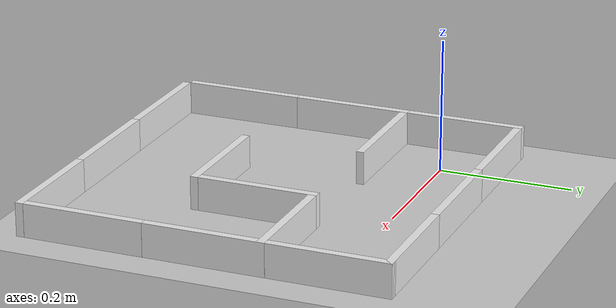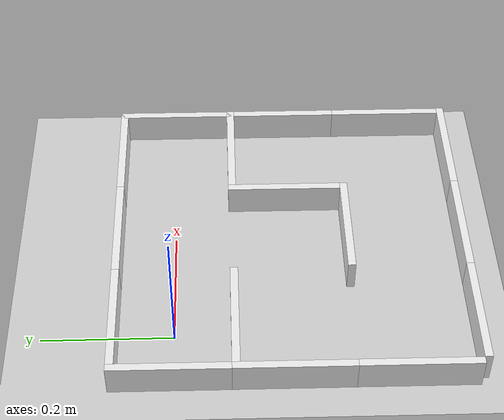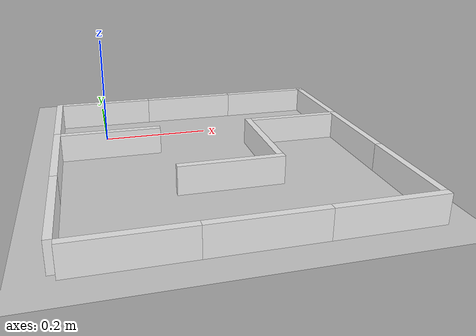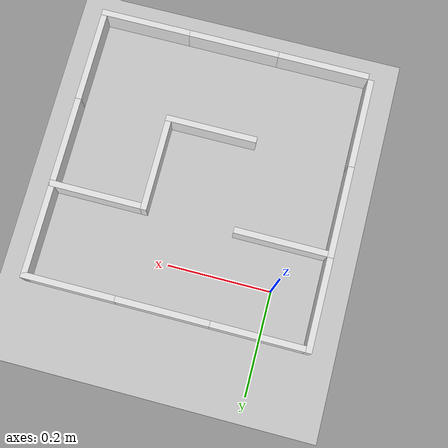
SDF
<?xml version="1.0" ?>
<!-- |    This document was autogenerated by xacro from /home/ubuntu/catkin_ws/src/raspimouse_sim/raspimouse_gazebo/materials/sample_maze.world.xacro | -->
<!-- |    EDITING THIS FILE BY HAND IS NOT RECOMMENDED                                 | -->
<sdf version="1.4" xmlns:xacro="http://ros.org/wiki/xacro">
  <world name="default">
    <scene>
      <shadows>0</shadows>
    </scene>
    <include>
      <uri>model://ground_plane</uri>
    </include>
    <light name="sun" type="directional">
      <cast_shadows>1</cast_shadows>
      <pose>0 0 5 0 0 0</pose>
      <diffuse>0.8 0.8 0.8 1</diffuse>
      <specular>0.2 0.2 0.2 1</specular>
      <attenuation>
        <range>1000</range>
        <constant>0.9</constant>
        <linear>0.01</linear>
        <quadratic>0.001</quadratic>
      </attenuation>
      <direction>-0.5 0.1 -0.9</direction>
    </light>
    <physics type="ode">
      <max_step_size>0.001</max_step_size>
      <real_time_factor>1</real_time_factor>
      <real_time_update_rate>1000</real_time_update_rate>
      <gravity>0 0 -9.8</gravity>
    </physics>
    <gui fullscreen="0">
      <camera name="user_camera">
        <pose>-0.556842 -0.914575 1.68773 0 1.05964 0.520195</pose>
        <view_controller>orbit</view_controller>
      </camera>
    </gui>
    <!-- horizontal -->
    <model name="wall01">
      <pose>-0.090 0.006 0.025 0 0 1.57</pose>
      <link name="link">
        <inertial>
          <mass>10</mass>
          <inertia>
            <ixx>1</ixx>
            <ixy>0</ixy>
            <ixz>0</ixz>
            <iyy>1</iyy>
            <iyz>0</iyz>
            <izz>1</izz>
          </inertia>
        </inertial>
        <collision name="collision">
          <geometry>
            <box>
              <size>0.180 0.012 0.050</size>
            </box>
          </geometry>
          <max_contacts>10</max_contacts>
          <surface>
            <bounce/>
            <friction>
              <ode/>
            </friction>
            <contact>
              <ode/>
            </contact>
          </surface>
        </collision>
        <visual name="visual">
          <geometry>
            <box>
              <size>0.180 0.012 0.050</size>
            </box>
          </geometry>
          <material>
            <script>
              <uri>file://media/materials/scripts/gazebo.material</uri>
              <name>Gazebo/White</name>
            </script>
          </material>
        </visual>
        <velocity_decay>
          <linear>0</linear>
          <angular>0</angular>
        </velocity_decay>
        <self_collide>0</self_collide>
        <kinematic>0</kinematic>
        <gravity>1</gravity>
      </link>
      <static>1</static>
    </model>
    <model name="wall02">
      <pose>-0.090 -0.174 0.025 0 0 1.57</pose>
      <link name="link">
        <inertial>
          <mass>10</mass>
          <inertia>
            <ixx>1</ixx>
            <ixy>0</ixy>
            <ixz>0</ixz>
            <iyy>1</iyy>
            <iyz>0</iyz>
            <izz>1</izz>
          </inertia>
        </inertial>
        <collision name="collision">
          <geometry>
            <box>
              <size>0.180 0.012 0.050</size>
            </box>
          </geometry>
          <max_contacts>10</max_contacts>
          <surface>
            <bounce/>
            <friction>
              <ode/>
            </friction>
            <contact>
              <ode/>
            </contact>
          </surface>
        </collision>
        <visual name="visual">
          <geometry>
            <box>
              <size>0.180 0.012 0.050</size>
            </box>
          </geometry>
          <material>
            <script>
              <uri>file://media/materials/scripts/gazebo.material</uri>
              <name>Gazebo/White</name>
            </script>
          </material>
        </visual>
        <velocity_decay>
          <linear>0</linear>
          <angular>0</angular>
        </velocity_decay>
        <self_collide>0</self_collide>
        <kinematic>0</kinematic>
        <gravity>1</gravity>
      </link>
      <static>1</static>
    </model>
    <model name="wall03">
      <pose>-0.090 -0.354 0.025 0 0 1.57</pose>
      <link name="link">
        <inertial>
          <mass>10</mass>
          <inertia>
            <ixx>1</ixx>
            <ixy>0</ixy>
            <ixz>0</ixz>
            <iyy>1</iyy>
            <iyz>0</iyz>
            <izz>1</izz>
          </inertia>
        </inertial>
        <collision name="collision">
          <geometry>
            <box>
              <size>0.180 0.012 0.050</size>
            </box>
          </geometry>
          <max_contacts>10</max_contacts>
          <surface>
            <bounce/>
            <friction>
              <ode/>
            </friction>
            <contact>
              <ode/>
            </contact>
          </surface>
        </collision>
        <visual name="visual">
          <geometry>
            <box>
              <size>0.180 0.012 0.050</size>
            </box>
          </geometry>
          <material>
            <script>
              <uri>file://media/materials/scripts/gazebo.material</uri>
              <name>Gazebo/White</name>
            </script>
          </material>
        </visual>
        <velocity_decay>
          <linear>0</linear>
          <angular>0</angular>
        </velocity_decay>
        <self_collide>0</self_collide>
        <kinematic>0</kinematic>
        <gravity>1</gravity>
      </link>
      <static>1</static>
    </model>
    <!-- vertical -->
    <model name="wall04">
      <pose>0.006 0.090 0.025 0 0 0</pose>
      <link name="link">
        <inertial>
          <mass>10</mass>
          <inertia>
            <ixx>1</ixx>
            <ixy>0</ixy>
            <ixz>0</ixz>
            <iyy>1</iyy>
            <iyz>0</iyz>
            <izz>1</izz>
          </inertia>
        </inertial>
        <collision name="collision">
          <geometry>
            <box>
              <size>0.180 0.012 0.050</size>
            </box>
          </geometry>
          <max_contacts>10</max_contacts>
          <surface>
            <bounce/>
            <friction>
              <ode/>
            </friction>
            <contact>
              <ode/>
            </contact>
          </surface>
        </collision>
        <visual name="visual">
          <geometry>
            <box>
              <size>0.180 0.012 0.050</size>
            </box>
          </geometry>
          <material>
            <script>
              <uri>file://media/materials/scripts/gazebo.material</uri>
              <name>Gazebo/White</name>
            </script>
          </material>
        </visual>
        <velocity_decay>
          <linear>0</linear>
          <angular>0</angular>
        </velocity_decay>
        <self_collide>0</self_collide>
        <kinematic>0</kinematic>
        <gravity>1</gravity>
      </link>
      <static>1</static>
    </model>
    <model name="wall05">
      <pose>0.186 0.090 0.025 0 0 0</pose>
      <link name="link">
        <inertial>
          <mass>10</mass>
          <inertia>
            <ixx>1</ixx>
            <ixy>0</ixy>
            <ixz>0</ixz>
            <iyy>1</iyy>
            <iyz>0</iyz>
            <izz>1</izz>
          </inertia>
        </inertial>
        <collision name="collision">
          <geometry>
            <box>
              <size>0.180 0.012 0.050</size>
            </box>
          </geometry>
          <max_contacts>10</max_contacts>
          <surface>
            <bounce/>
            <friction>
              <ode/>
            </friction>
            <contact>
              <ode/>
            </contact>
          </surface>
        </collision>
        <visual name="visual">
          <geometry>
            <box>
              <size>0.180 0.012 0.050</size>
            </box>
          </geometry>
          <material>
            <script>
              <uri>file://media/materials/scripts/gazebo.material</uri>
              <name>Gazebo/White</name>
            </script>
          </material>
        </visual>
        <velocity_decay>
          <linear>0</linear>
          <angular>0</angular>
        </velocity_decay>
        <self_collide>0</self_collide>
        <kinematic>0</kinematic>
        <gravity>1</gravity>
      </link>
      <static>1</static>
    </model>
    <model name="wall06">
      <pose>0.366 0.090 0.025 0 0 0</pose>
      <link name="link">
        <inertial>
          <mass>10</mass>
          <inertia>
            <ixx>1</ixx>
            <ixy>0</ixy>
            <ixz>0</ixz>
            <iyy>1</iyy>
            <iyz>0</iyz>
            <izz>1</izz>
          </inertia>
        </inertial>
        <collision name="collision">
          <geometry>
            <box>
              <size>0.180 0.012 0.050</size>
            </box>
          </geometry>
          <max_contacts>10</max_contacts>
          <surface>
            <bounce/>
            <friction>
              <ode/>
            </friction>
            <contact>
              <ode/>
            </contact>
          </surface>
        </collision>
        <visual name="visual">
          <geometry>
            <box>
              <size>0.180 0.012 0.050</size>
            </box>
          </geometry>
          <material>
            <script>
              <uri>file://media/materials/scripts/gazebo.material</uri>
              <name>Gazebo/White</name>
            </script>
          </material>
        </visual>
        <velocity_decay>
          <linear>0</linear>
          <angular>0</angular>
        </velocity_decay>
        <self_collide>0</self_collide>
        <kinematic>0</kinematic>
        <gravity>1</gravity>
      </link>
      <static>1</static>
    </model>
    <!-- horizontal -->
    <model name="wall07">
      <pose>0.450 0.006 0.025 0 0 1.57</pose>
      <link name="link">
        <inertial>
          <mass>10</mass>
          <inertia>
            <ixx>1</ixx>
            <ixy>0</ixy>
            <ixz>0</ixz>
            <iyy>1</iyy>
            <iyz>0</iyz>
            <izz>1</izz>
          </inertia>
        </inertial>
        <collision name="collision">
          <geometry>
            <box>
              <size>0.180 0.012 0.050</size>
            </box>
          </geometry>
          <max_contacts>10</max_contacts>
          <surface>
            <bounce/>
            <friction>
              <ode/>
            </friction>
            <contact>
              <ode/>
            </contact>
          </surface>
        </collision>
        <visual name="visual">
          <geometry>
            <box>
              <size>0.180 0.012 0.050</size>
            </box>
          </geometry>
          <material>
            <script>
              <uri>file://media/materials/scripts/gazebo.material</uri>
              <name>Gazebo/White</name>
            </script>
          </material>
        </visual>
        <velocity_decay>
          <linear>0</linear>
          <angular>0</angular>
        </velocity_decay>
        <self_collide>0</self_collide>
        <kinematic>0</kinematic>
        <gravity>1</gravity>
      </link>
      <static>1</static>
    </model>
    <model name="wall08">
      <pose>0.450 -0.174 0.025 0 0 1.57</pose>
      <link name="link">
        <inertial>
          <mass>10</mass>
          <inertia>
            <ixx>1</ixx>
            <ixy>0</ixy>
            <ixz>0</ixz>
            <iyy>1</iyy>
            <iyz>0</iyz>
            <izz>1</izz>
          </inertia>
        </inertial>
        <collision name="collision">
          <geometry>
            <box>
              <size>0.180 0.012 0.050</size>
            </box>
          </geometry>
          <max_contacts>10</max_contacts>
          <surface>
            <bounce/>
            <friction>
              <ode/>
            </friction>
            <contact>
              <ode/>
            </contact>
          </surface>
        </collision>
        <visual name="visual">
          <geometry>
            <box>
              <size>0.180 0.012 0.050</size>
            </box>
          </geometry>
          <material>
            <script>
              <uri>file://media/materials/scripts/gazebo.material</uri>
              <name>Gazebo/White</name>
            </script>
          </material>
        </visual>
        <velocity_decay>
          <linear>0</linear>
          <angular>0</angular>
        </velocity_decay>
        <self_collide>0</self_collide>
        <kinematic>0</kinematic>
        <gravity>1</gravity>
      </link>
      <static>1</static>
    </model>
    <model name="wall09">
      <pose>0.450 -0.354 0.025 0 0 1.57</pose>
      <link name="link">
        <inertial>
          <mass>10</mass>
          <inertia>
            <ixx>1</ixx>
            <ixy>0</ixy>
            <ixz>0</ixz>
            <iyy>1</iyy>
            <iyz>0</iyz>
            <izz>1</izz>
          </inertia>
        </inertial>
        <collision name="collision">
          <geometry>
            <box>
              <size>0.180 0.012 0.050</size>
            </box>
          </geometry>
          <max_contacts>10</max_contacts>
          <surface>
            <bounce/>
            <friction>
              <ode/>
            </friction>
            <contact>
              <ode/>
            </contact>
          </surface>
        </collision>
        <visual name="visual">
          <geometry>
            <box>
              <size>0.180 0.012 0.050</size>
            </box>
          </geometry>
          <material>
            <script>
              <uri>file://media/materials/scripts/gazebo.material</uri>
              <name>Gazebo/White</name>
            </script>
          </material>
        </visual>
        <velocity_decay>
          <linear>0</linear>
          <angular>0</angular>
        </velocity_decay>
        <self_collide>0</self_collide>
        <kinematic>0</kinematic>
        <gravity>1</gravity>
      </link>
      <static>1</static>
    </model>
    <!-- vertical -->
    <model name="wall10">
      <pose>0.006 -0.450 0.025 0 0 0</pose>
      <link name="link">
        <inertial>
          <mass>10</mass>
          <inertia>
            <ixx>1</ixx>
            <ixy>0</ixy>
            <ixz>0</ixz>
            <iyy>1</iyy>
            <iyz>0</iyz>
            <izz>1</izz>
          </inertia>
        </inertial>
        <collision name="collision">
          <geometry>
            <box>
              <size>0.180 0.012 0.050</size>
            </box>
          </geometry>
          <max_contacts>10</max_contacts>
          <surface>
            <bounce/>
            <friction>
              <ode/>
            </friction>
            <contact>
              <ode/>
            </contact>
          </surface>
        </collision>
        <visual name="visual">
          <geometry>
            <box>
              <size>0.180 0.012 0.050</size>
            </box>
          </geometry>
          <material>
            <script>
              <uri>file://media/materials/scripts/gazebo.material</uri>
              <name>Gazebo/White</name>
            </script>
          </material>
        </visual>
        <velocity_decay>
          <linear>0</linear>
          <angular>0</angular>
        </velocity_decay>
        <self_collide>0</self_collide>
        <kinematic>0</kinematic>
        <gravity>1</gravity>
      </link>
      <static>1</static>
    </model>
    <model name="wall11">
      <pose>0.186 -0.450 0.025 0 0 0</pose>
      <link name="link">
        <inertial>
          <mass>10</mass>
          <inertia>
            <ixx>1</ixx>
            <ixy>0</ixy>
            <ixz>0</ixz>
            <iyy>1</iyy>
            <iyz>0</iyz>
            <izz>1</izz>
          </inertia>
        </inertial>
        <collision name="collision">
          <geometry>
            <box>
              <size>0.180 0.012 0.050</size>
            </box>
          </geometry>
          <max_contacts>10</max_contacts>
          <surface>
            <bounce/>
            <friction>
              <ode/>
            </friction>
            <contact>
              <ode/>
            </contact>
          </surface>
        </collision>
        <visual name="visual">
          <geometry>
            <box>
              <size>0.180 0.012 0.050</size>
            </box>
          </geometry>
          <material>
            <script>
              <uri>file://media/materials/scripts/gazebo.material</uri>
              <name>Gazebo/White</name>
            </script>
          </material>
        </visual>
        <velocity_decay>
          <linear>0</linear>
          <angular>0</angular>
        </velocity_decay>
        <self_collide>0</self_collide>
        <kinematic>0</kinematic>
        <gravity>1</gravity>
      </link>
      <static>1</static>
    </model>
    <model name="wall12">
      <pose>0.366 -0.450 0.025 0 0 0</pose>
      <link name="link">
        <inertial>
          <mass>10</mass>
          <inertia>
            <ixx>1</ixx>
            <ixy>0</ixy>
            <ixz>0</ixz>
            <iyy>1</iyy>
            <iyz>0</iyz>
            <izz>1</izz>
          </inertia>
        </inertial>
        <collision name="collision">
          <geometry>
            <box>
              <size>0.180 0.012 0.050</size>
            </box>
          </geometry>
          <max_contacts>10</max_contacts>
          <surface>
            <bounce/>
            <friction>
              <ode/>
            </friction>
            <contact>
              <ode/>
            </contact>
          </surface>
        </collision>
        <visual name="visual">
          <geometry>
            <box>
              <size>0.180 0.012 0.050</size>
            </box>
          </geometry>
          <material>
            <script>
              <uri>file://media/materials/scripts/gazebo.material</uri>
              <name>Gazebo/White</name>
            </script>
          </material>
        </visual>
        <velocity_decay>
          <linear>0</linear>
          <angular>0</angular>
        </velocity_decay>
        <self_collide>0</self_collide>
        <kinematic>0</kinematic>
        <gravity>1</gravity>
      </link>
      <static>1</static>
    </model>
    <!-- plus alpha -->
    <model name="wall13">
      <pose>0.186 -0.270 0.025 0 0 0</pose>
      <link name="link">
        <inertial>
          <mass>10</mass>
          <inertia>
            <ixx>1</ixx>
            <ixy>0</ixy>
            <ixz>0</ixz>
            <iyy>1</iyy>
            <iyz>0</iyz>
            <izz>1</izz>
          </inertia>
        </inertial>
        <collision name="collision">
          <geometry>
            <box>
              <size>0.180 0.012 0.050</size>
            </box>
          </geometry>
          <max_contacts>10</max_contacts>
          <surface>
            <bounce/>
            <friction>
              <ode/>
            </friction>
            <contact>
              <ode/>
            </contact>
          </surface>
        </collision>
        <visual name="visual">
          <geometry>
            <box>
              <size>0.180 0.012 0.050</size>
            </box>
          </geometry>
          <material>
            <script>
              <uri>file://media/materials/scripts/gazebo.material</uri>
              <name>Gazebo/White</name>
            </script>
          </material>
        </visual>
        <velocity_decay>
          <linear>0</linear>
          <angular>0</angular>
        </velocity_decay>
        <self_collide>0</self_collide>
        <kinematic>0</kinematic>
        <gravity>1</gravity>
      </link>
      <static>1</static>
    </model>
    <model name="wall14">
      <pose>0.366 -0.090 0.025 0 0 0</pose>
      <link name="link">
        <inertial>
          <mass>10</mass>
          <inertia>
            <ixx>1</ixx>
            <ixy>0</ixy>
            <ixz>0</ixz>
            <iyy>1</iyy>
            <iyz>0</iyz>
            <izz>1</izz>
          </inertia>
        </inertial>
        <collision name="collision">
          <geometry>
            <box>
              <size>0.180 0.012 0.050</size>
            </box>
          </geometry>
          <max_contacts>10</max_contacts>
          <surface>
            <bounce/>
            <friction>
              <ode/>
            </friction>
            <contact>
              <ode/>
            </contact>
          </surface>
        </collision>
        <visual name="visual">
          <geometry>
            <box>
              <size>0.180 0.012 0.050</size>
            </box>
          </geometry>
          <material>
            <script>
              <uri>file://media/materials/scripts/gazebo.material</uri>
              <name>Gazebo/White</name>
            </script>
          </material>
        </visual>
        <velocity_decay>
          <linear>0</linear>
          <angular>0</angular>
        </velocity_decay>
        <self_collide>0</self_collide>
        <kinematic>0</kinematic>
        <gravity>1</gravity>
      </link>
      <static>1</static>
    </model>
    <model name="wall15">
      <pose>0.270 -0.174 0.025 0 0 1.57</pose>
      <link name="link">
        <inertial>
          <mass>10</mass>
          <inertia>
            <ixx>1</ixx>
            <ixy>0</ixy>
            <ixz>0</ixz>
            <iyy>1</iyy>
            <iyz>0</iyz>
            <izz>1</izz>
          </inertia>
        </inertial>
        <collision name="collision">
          <geometry>
            <box>
              <size>0.180 0.012 0.050</size>
            </box>
          </geometry>
          <max_contacts>10</max_contacts>
          <surface>
            <bounce/>
            <friction>
              <ode/>
            </friction>
            <contact>
              <ode/>
            </contact>
          </surface>
        </collision>
        <visual name="visual">
          <geometry>
            <box>
              <size>0.180 0.012 0.050</size>
            </box>
          </geometry>
          <material>
            <script>
              <uri>file://media/materials/scripts/gazebo.material</uri>
              <name>Gazebo/White</name>
            </script>
          </material>
        </visual>
        <velocity_decay>
          <linear>0</linear>
          <angular>0</angular>
        </velocity_decay>
        <self_collide>0</self_collide>
        <kinematic>0</kinematic>
        <gravity>1</gravity>
      </link>
      <static>1</static>
    </model>
    <model name="wall16">
      <pose>0.006 -0.090 0.025 0 0 0</pose>
      <link name="link">
        <inertial>
          <mass>10</mass>
          <inertia>
            <ixx>1</ixx>
            <ixy>0</ixy>
            <ixz>0</ixz>
            <iyy>1</iyy>
            <iyz>0</iyz>
            <izz>1</izz>
          </inertia>
        </inertial>
        <collision name="collision">
          <geometry>
            <box>
              <size>0.180 0.012 0.050</size>
            </box>
          </geometry>
          <max_contacts>10</max_contacts>
          <surface>
            <bounce/>
            <friction>
              <ode/>
            </friction>
            <contact>
              <ode/>
            </contact>
          </surface>
        </collision>
        <visual name="visual">
          <geometry>
            <box>
              <size>0.180 0.012 0.050</size>
            </box>
          </geometry>
          <material>
            <script>
              <uri>file://media/materials/scripts/gazebo.material</uri>
              <name>Gazebo/White</name>
            </script>
          </material>
        </visual>
        <velocity_decay>
          <linear>0</linear>
          <angular>0</angular>
        </velocity_decay>
        <self_collide>0</self_collide>
        <kinematic>0</kinematic>
        <gravity>1</gravity>
      </link>
      <static>1</static>
    </model>
  </world>
</sdf>
